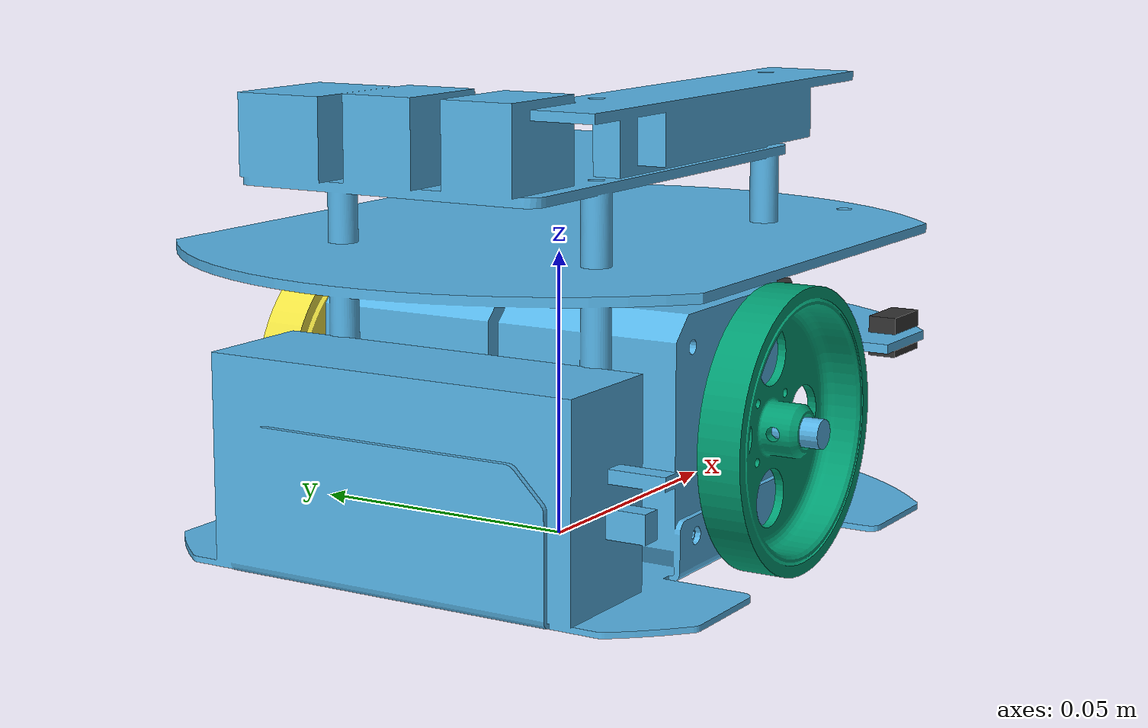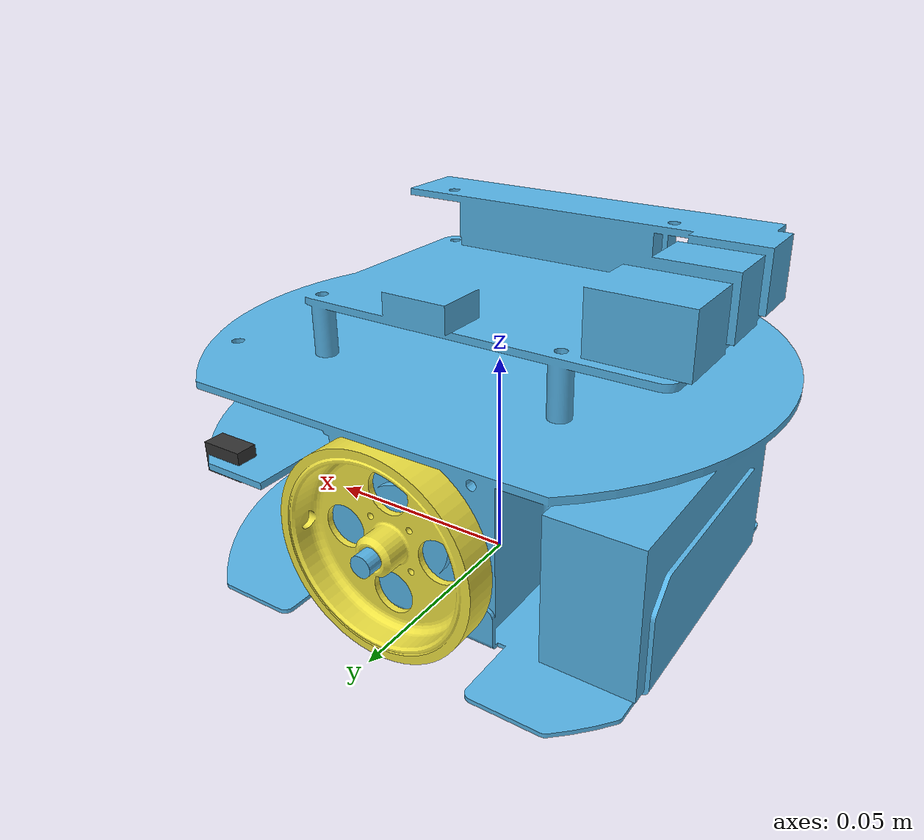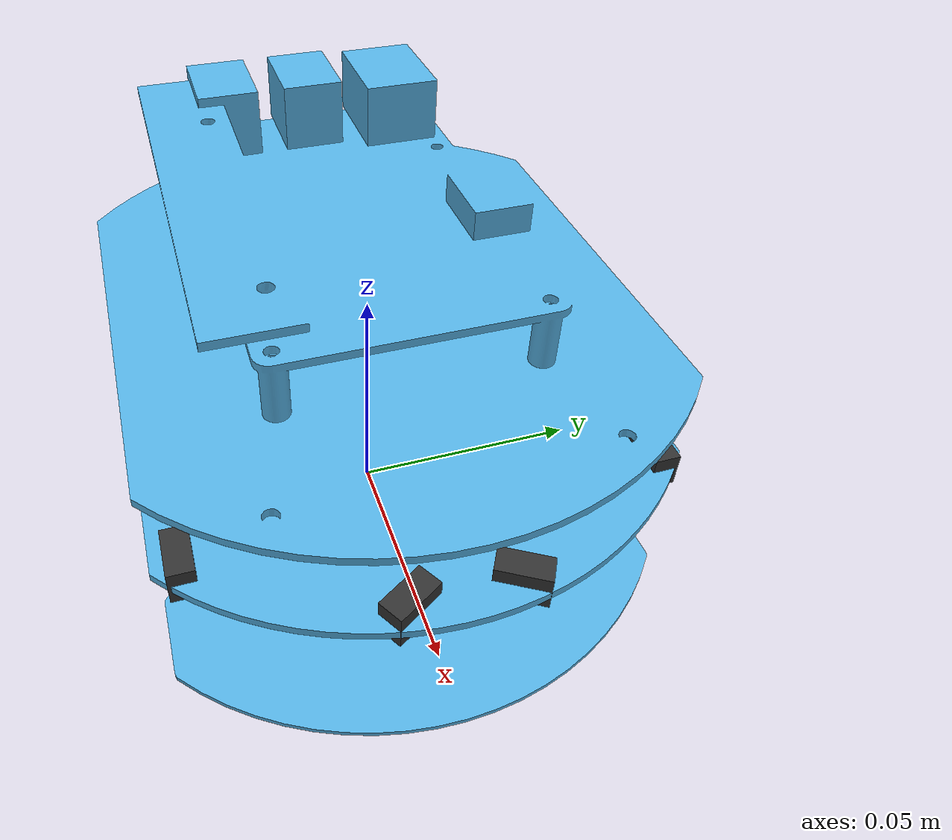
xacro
<?xml version="1.0"?>
<robot name="raspimouse_on_gazebo"
       xmlns:sensor="http://playerstage.sourceforge.net/gazebo/xmlschema/#sensor"
       xmlns:controller="http://playerstage.sourceforge.net/gazebo/xmlschema/#controller"
       xmlns:interface="http://playerstage.sourceforge.net/gazebo/xmlschema/#interface"
       xmlns:xacro="http://ros.org/wiki/xacro">

  <xacro:include filename="$(find raspimouse_description)/urdf/body/body.urdf.xacro" />
  <xacro:include filename="$(find raspimouse_description)/urdf/wheel/wheel.urdf.xacro" />
  <xacro:include filename="$(find raspimouse_description)/urdf/sensors/lightsens.urdf.xacro" />

  <!-- =============== Link & Joint =============== -->
  <!-- Base -->
  <link name="base_footprint" />

  <xacro:base parent="base_footprint">
    <origin xyz="0 0 0.00185"  rpy="0 0 0"/>
  </xacro:base>

  <!-- Wheel -->
  <xacro:wheel prefix="right" parent="base_link">
    <origin xyz="0 -0.0475 0.02215" rpy="0 0 3.1416" />
    <axis xyz="0 -1 0" />
  </xacro:wheel>
  <xacro:wheel prefix="left" parent="base_link">
    <origin xyz="0 0.0475 0.02215" rpy="0 0 0" />
    <axis xyz="0 1 0" />
  </xacro:wheel>

  <!-- Sensors -->
  <xacro:light_sensor prefix="rf" parent="base_link">
    <origin xyz="0.04 -0.045 0.032" rpy="0 0 0" />
  </xacro:light_sensor>

  <xacro:light_sensor prefix="rs" parent="base_link">
    <origin xyz="0.059 -0.01 0.032" rpy="0 0 -1.04" />
  </xacro:light_sensor>

  <xacro:light_sensor prefix="ls" parent="base_link">
    <origin xyz="0.059 0.01 0.032" rpy="0 0 1.04" />
  </xacro:light_sensor>

  <xacro:light_sensor prefix="lf" parent="base_link">
    <origin xyz="0.04 0.045 0.032" rpy="0 0 0" />
  </xacro:light_sensor>

  <!-- ===============  Transmission =============== -->
  <!-- VelocityJointInterface: requires position, velocity -->
  <!-- for DiffDriveController -->
  <xacro:wheel_trans prefix="right" interface="hardware_interface/VelocityJointInterface" />
  <xacro:wheel_trans prefix="left" interface="hardware_interface/VelocityJointInterface" />

  <!-- =============== Gazebo =============== -->
  <gazebo>
    <plugin name="gazebo_ros_control" filename="libgazebo_ros_control.so">
      <robotNamespace>raspimouse_on_gazebo</robotNamespace>
      <legacyModeNS>true</legacyModeNS>
    </plugin>
  </gazebo>

  <!-- Base -->
  <xacro:base_gazebo/>

  <!-- Wheel -->
  <xacro:wheel_gazebo prefix="right" />
  <xacro:wheel_gazebo prefix="left" />

  <!-- Sensors -->
  <xacro:lightsensor_gazebo prefix="rf" base_rad="0" rad_range="0.3" min_range="0.01" max_range="0.6" />
  <xacro:lightsensor_gazebo prefix="rs" base_rad="-1.04" rad_range="0.3" min_range="0.01" max_range="0.6" />
  <xacro:lightsensor_gazebo prefix="ls" base_rad="1.04" rad_range="0.3" min_range="0.01" max_range="0.6" />
  <xacro:lightsensor_gazebo prefix="lf" base_rad="0" rad_range="0.3" min_range="0.01" max_range="0.6" />

  <raspimouse_on_gazebo/>
</robot>

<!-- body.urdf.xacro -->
<robot xmlns:xacro="http://ros.org/wiki/xacro">
  <xacro:include filename="$(find raspimouse_description)/urdf/body/body.gazebo.xacro" />
  <xacro:property name="M_PI" value="3.1415926535897931" />
  <xacro:property name="velocity_scale_factor" value="1.0" />
  <xacro:macro name="base" params="parent *joint_origin">
    <joint name="base_joint" type="fixed">
      <xacro:insert_block name="joint_origin" />
      <parent link="${parent}" />
      <child link="base_link" />
    </joint>
    <link name="base_link">
      <visual>
        <geometry>
          <mesh filename="package://raspimouse_description/meshes/obj/body/raspi_body.obj" />
        </geometry>
      </visual>
      <collision>
        <geometry>
          <mesh filename="package://raspimouse_description/meshes/obj/body/raspi_body.obj" />
        </geometry>
      </collision>
      <inertial>

        <!-- NOTE BEGINNING -->
        <!-- Biased origin causes the slipping problem. -->
        <!-- Not solved yet. -->
        <!-- NOTE END -->
        <!-- real origin -->
        <!-- virtual origin -->
        <origin xyz="-0.01081720 -0.00078063 0.02842790" />
        <mass value="0.23409945"/>
        <inertia
              ixx="0.00020481"
              ixy="0.00000162" iyy="0.00025632"
              ixz="0.00000155" iyz="0.00000742" izz="0.00026763"/>

      </inertial>
    </link>
  </xacro:macro>
</robot>

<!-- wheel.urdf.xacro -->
<robot xmlns:xacro="http://ros.org/wiki/xacro">
  <xacro:include filename="$(find raspimouse_description)/urdf/wheel/wheel.transmission.xacro" />
  <xacro:include filename="$(find raspimouse_description)/urdf/wheel/wheel.gazebo.xacro" />
  <xacro:property name="wheel_radius" value="0.024" />
  <xacro:property name="wheel_length" value="0.008" />
  <xacro:property name="wheel_mass" value="0.0113" />
  <xacro:macro name="wheel" params="prefix parent *joint_origin *joint_axis">
  <joint name="${prefix}_wheel_joint" type="continuous">
    <xacro:insert_block name="joint_origin" />
    <xacro:insert_block name="joint_axis" />
    <parent link="${parent}" />
    <child link="${prefix}_wheel" />
  </joint>
  <link name="${prefix}_wheel">
    <visual>
      <geometry>
        <mesh filename="package://raspimouse_description/meshes/obj/wheel/raspi_wheel2.obj" />
      </geometry>
    </visual>
    <collision>
        <origin xyz="0 ${-wheel_length/2.0} 0" rpy="${pi / 2} 0 0" />
        <geometry>
          <cylinder radius="${wheel_radius}" length="${wheel_length}" />
        </geometry>
    </collision>
    <inertial>
      <origin xyz="-0.00008176 	-0.00478578 0.00000005" />

      <mass value="0.0553656"/>
      <inertia
            ixx="0.0000115"
            ixy="0.0000000" iyy="0.0000223"
            ixz="0.0000000" iyz="-0.0000000" izz="0.0000114"/>
    </inertial>
  </link>
  </xacro:macro>
</robot>

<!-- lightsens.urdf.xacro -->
<robot name="light_sensor" xmlns:xacro="http://ros.org/wiki/xacro">

  <xacro:include filename="$(find raspimouse_description)/urdf/common.xacro" />
  <xacro:include filename="$(find raspimouse_description)/urdf/sensors/lightsens.gazebo.xacro" />

  <xacro:macro name="light_sensor" params="prefix parent *joint_origin">
    <joint name="${prefix}_joint" type="fixed">
      <xacro:insert_block name="joint_origin" />
      <parent link="${parent}" />
      <child link="${prefix}_lightsensor_link" />
    </joint>

    <link name="${prefix}_lightsensor_link">
      <visual>
        <geometry>
          <box size="0.01 0.005 0.007" />
        </geometry>
        <material name="Gray">
          <color rgba="0.2 0.2 0.2 1" />
        </material>
      </visual>
      <inertial>
        <mass value="0.000001" />
        <origin xyz="0 0 0" />
        <inertia ixx="0.0001" ixy="0.0" ixz="0.0"
          iyy="0.0001" iyz="0.0"
          izz="0.0001" />
      </inertial>
    </link>
  </xacro:macro>
</robot>

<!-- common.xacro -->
<robot name="common" xmlns:xacro="http://ros.org/wiki/xacro">

  <xacro:property name="wheel_radius" value="0.024" />
  <xacro:property name="wheel_length" value="0.010" />
  <xacro:property name="wheel_mass" value="0.0113" />
  <xacro:property name="wheel_separation" value="0.0935" />

  <!-- PROPERTY LIST -->
  <!-- All units in m-kg-s-radians unit system -->
  <xacro:property name="M_PI" value="3.1415926535897932" />

  <!-- Inertial macros. Units are kg*m^2 -->
  <xacro:macro name="box_inertia" params="m x y z">
    <inertia ixx="${m*(y*y+z*z)/12}" ixy = "0" ixz = "0"
             iyy="${m*(z*z+x*x)/12}" iyz = "0"
             izz="${m*(x*x+y*y)/12}" />
  </xacro:macro>
  <xacro:macro name="cylinder_inertia" params="m r h">
    <inertia ixx="${m*(3*r*r+h*h)/12}" ixy="0" ixz="0"
             iyy="${m*(3*r*r+h*h)/12}" iyz="0"
             izz="${m*r*r/2}" />
  </xacro:macro>
  <xacro:macro name="sphere_inertia" params="m r">
    <inertia ixx="${m*r*r*2/5}" ixy="0" ixz="0"
             iyy="${m*r*r*2/5}" iyz="0"
             izz="${m*r*r*2/5}" />
  </xacro:macro>

</robot>
